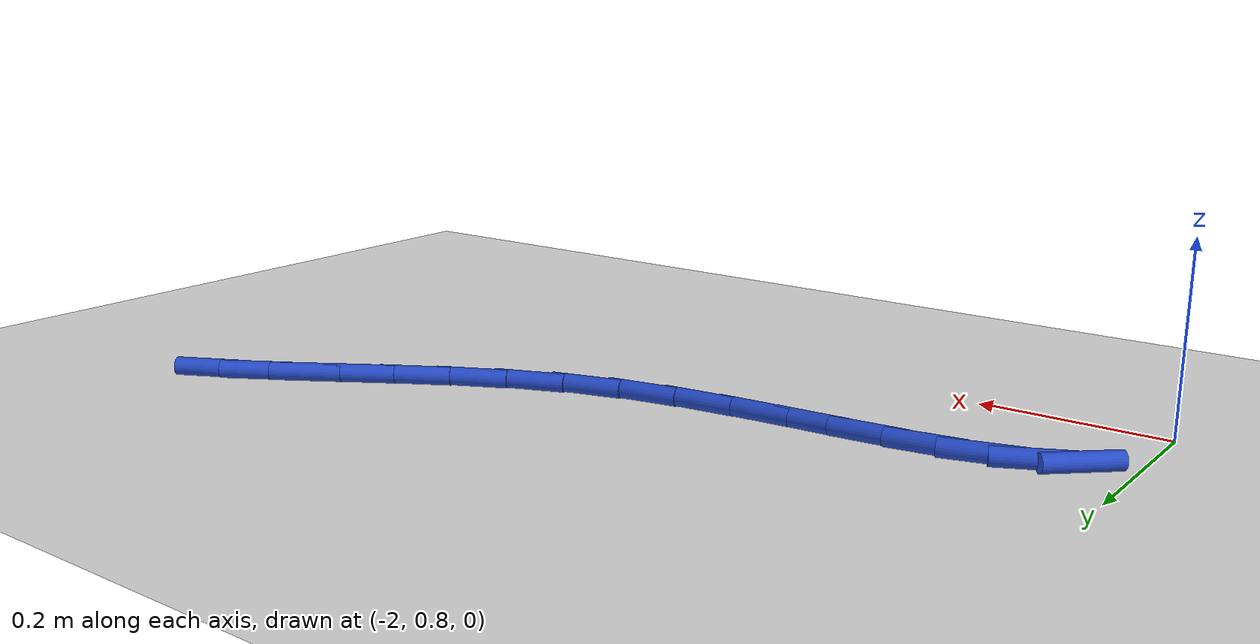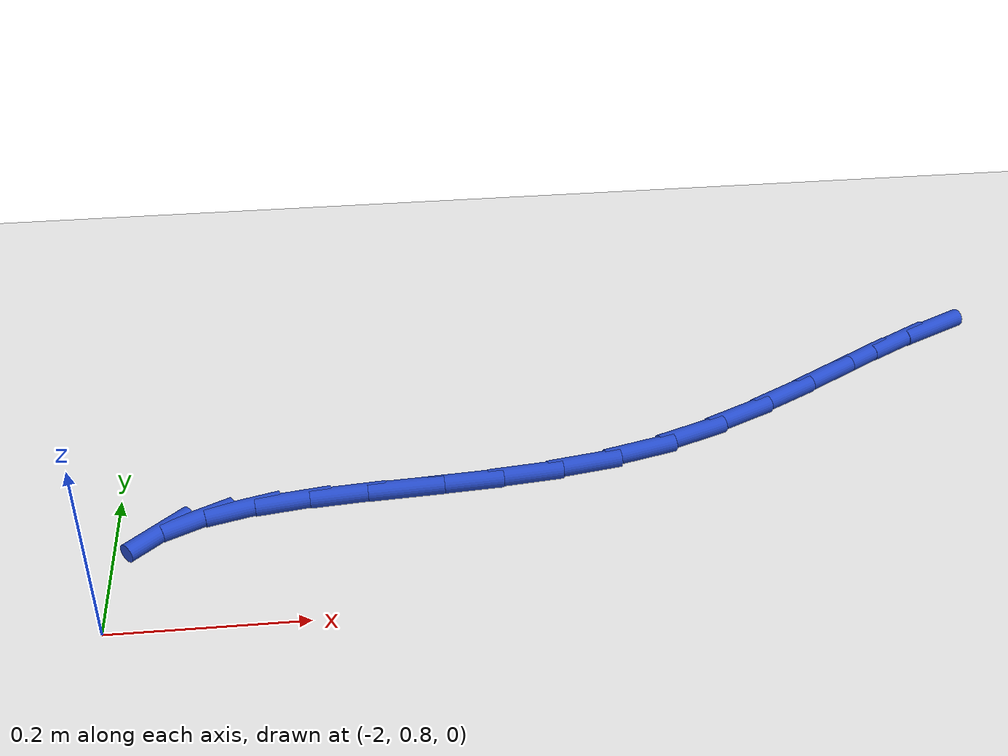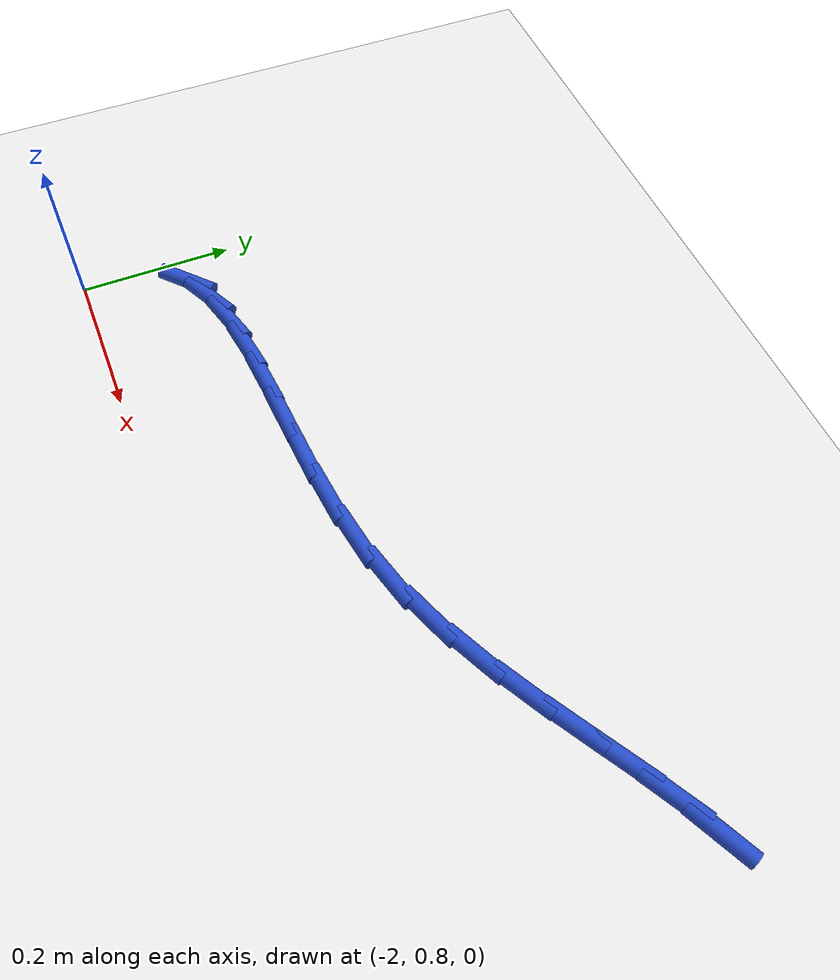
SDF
<sdf version="1.6">
 <world name="default">
  <model name="ground_plane">
   <static>1</static>
   <link name="link">
    <collision name="collision">
     <geometry><plane><normal>0 0 1</normal><size>100 100</size></plane></geometry>
     <surface><friction><ode><mu>100</mu><mu2>50</mu2></ode></friction></surface>
    </collision>
    <visual name="visual">
     <cast_shadows>0</cast_shadows>
     <geometry><plane><normal>0 0 1</normal><size>100 100</size></plane></geometry>
     <material>
      <script><uri>file://media/materials/scripts/gazebo.material</uri><name>Gazebo/WhiteGlow</name></script>
     </material>
    </visual>
   </link>
  </model>
  <model name="line">
   <link name="link_32">
    <pose>-1.078441029564543 1.218209353139725 0.01 0 1.57 0.46525836492123884</pose>
    <collision name="collision">
     <geometry><cylinder><radius>0.01</radius><length>0.08</length></cylinder></geometry>
    </collision>
    <visual name="visual">
     <material>
      <script><name>Gazebo/Blue</name><uri>file://media/materials/scripts/gazebo.material</uri></script>
     </material>
     <geometry><cylinder><radius>0.01</radius><length>0.08</length></cylinder></geometry>
    </visual>
   </link>
   <link name="link_33">
    <pose>-1.1258158667816 1.1944264709399541 0.01 0 1.57 0.5249530123507562</pose>
    <collision name="collision">
     <geometry><cylinder><radius>0.01</radius><length>0.08</length></cylinder></geometry>
    </collision>
    <visual name="visual">
     <material>
      <script><name>Gazebo/Blue</name><uri>file://media/materials/scripts/gazebo.material</uri></script>
     </material>
     <geometry><cylinder><radius>0.01</radius><length>0.08</length></cylinder></geometry>
    </visual>
   </link>
   <link name="link_34">
    <pose>-1.1750048147632752 1.1659383310539473 0.01 0 1.57 0.5493124226456678</pose>
    <collision name="collision">
     <geometry><cylinder><radius>0.01</radius><length>0.08</length></cylinder></geometry>
    </collision>
    <visual name="visual">
     <material>
      <script><name>Gazebo/Blue</name><uri>file://media/materials/scripts/gazebo.material</uri></script>
     </material>
     <geometry><cylinder><radius>0.01</radius><length>0.08</length></cylinder></geometry>
    </visual>
   </link>
   <link name="link_35">
    <pose>-1.2261079156905659 1.1346550784850367 0.01 0 1.57 0.5445322898843105</pose>
    <collision name="collision">
     <geometry><cylinder><radius>0.01</radius><length>0.08</length></cylinder></geometry>
    </collision>
    <visual name="visual">
     <material>
      <script><name>Gazebo/Blue</name><uri>file://media/materials/scripts/gazebo.material</uri></script>
     </material>
     <geometry><cylinder><radius>0.01</radius><length>0.08</length></cylinder></geometry>
    </visual>
   </link>
   <link name="link_36">
    <pose>-1.279225211744469 1.1024868582365555 0.01 0 1.57 0.5134245930214835</pose>
    <collision name="collision">
     <geometry><cylinder><radius>0.01</radius><length>0.08</length></cylinder></geometry>
    </collision>
    <visual name="visual">
     <material>
      <script><name>Gazebo/Blue</name><uri>file://media/materials/scripts/gazebo.material</uri></script>
     </material>
     <geometry><cylinder><radius>0.01</radius><length>0.08</length></cylinder></geometry>
    </visual>
   </link>
   <link name="link_37">
    <pose>-1.3344567451059834 1.0713438153118353 0.01 0 1.57 0.4564473395704383</pose>
    <collision name="collision">
     <geometry><cylinder><radius>0.01</radius><length>0.08</length></cylinder></geometry>
    </collision>
    <visual name="visual">
     <material>
      <script><name>Gazebo/Blue</name><uri>file://media/materials/scripts/gazebo.material</uri></script>
     </material>
     <geometry><cylinder><radius>0.01</radius><length>0.08</length></cylinder></geometry>
    </visual>
   </link>
   <link name="link_38">
    <pose>-1.391902557956108 1.0431360947142083 0.01 0 1.57 0.3726662908838794</pose>
    <collision name="collision">
     <geometry><cylinder><radius>0.01</radius><length>0.08</length></cylinder></geometry>
    </collision>
    <visual name="visual">
     <material>
      <script><name>Gazebo/Blue</name><uri>file://media/materials/scripts/gazebo.material</uri></script>
     </material>
     <geometry><cylinder><radius>0.01</radius><length>0.08</length></cylinder></geometry>
    </visual>
   </link>
   <link name="link_39">
    <pose>-1.4516626924758396 1.019773841447007 0.01 0 1.57 0.2651661795075018</pose>
    <collision name="collision">
     <geometry><cylinder><radius>0.01</radius><length>0.08</length></cylinder></geometry>
    </collision>
    <visual name="visual">
     <material>
      <script><name>Gazebo/Blue</name><uri>file://media/materials/scripts/gazebo.material</uri></script>
     </material>
     <geometry><cylinder><radius>0.01</radius><length>0.08</length></cylinder></geometry>
    </visual>
   </link>
   <link name="link_40">
    <pose>-1.5137425528127186 1.0029153736825904 0.01 0 1.57 0.17041154281142065</pose>
    <collision name="collision">
     <geometry><cylinder><radius>0.01</radius><length>0.08</length></cylinder></geometry>
    </collision>
    <visual name="visual">
     <material>
      <script><name>Gazebo/Blue</name><uri>file://media/materials/scripts/gazebo.material</uri></script>
     </material>
     <geometry><cylinder><radius>0.01</radius><length>0.08</length></cylinder></geometry>
    </visual>
   </link>
   <link name="link_41">
    <pose>-1.5773051651790109 0.9919774861996868 0.01 0 1.57 0.10586630148808403</pose>
    <collision name="collision">
     <geometry><cylinder><radius>0.01</radius><length>0.08</length></cylinder></geometry>
    </collision>
    <visual name="visual">
     <material>
      <script><name>Gazebo/Blue</name><uri>file://media/materials/scripts/gazebo.material</uri></script>
     </material>
     <geometry><cylinder><radius>0.01</radius><length>0.08</length></cylinder></geometry>
    </visual>
   </link>
   <link name="link_42">
    <pose>-1.6410717746881742 0.9852014175018949 0.01 0 1.57 0.06981024017355478</pose>
    <collision name="collision">
     <geometry><cylinder><radius>0.01</radius><length>0.08</length></cylinder></geometry>
    </collision>
    <visual name="visual">
     <material>
      <script><name>Gazebo/Blue</name><uri>file://media/materials/scripts/gazebo.material</uri></script>
     </material>
     <geometry><cylinder><radius>0.01</radius><length>0.08</length></cylinder></geometry>
    </visual>
   </link>
   <link name="link_43">
    <pose>-1.7037597283057013 0.9808180333260471 0.01 0 1.57 0.06224408921519274</pose>
    <collision name="collision">
     <geometry><cylinder><radius>0.01</radius><length>0.08</length></cylinder></geometry>
    </collision>
    <visual name="visual">
     <material>
      <script><name>Gazebo/Blue</name><uri>file://media/materials/scripts/gazebo.material</uri></script>
     </material>
     <geometry><cylinder><radius>0.01</radius><length>0.08</length></cylinder></geometry>
    </visual>
   </link>
   <link name="link_44">
    <pose>-1.764086372997085 0.9770581994089745 0.01 0 1.57 0.0863266538071277</pose>
    <collision name="collision">
     <geometry><cylinder><radius>0.01</radius><length>0.08</length></cylinder></geometry>
    </collision>
    <visual name="visual">
     <material>
      <script><name>Gazebo/Blue</name><uri>file://media/materials/scripts/gazebo.material</uri></script>
     </material>
     <geometry><cylinder><radius>0.01</radius><length>0.08</length></cylinder></geometry>
    </visual>
   </link>
   <link name="link_45">
    <pose>-1.82076905572782 0.9721527814875092 0.01 0 1.57 0.14996168356677436</pose>
    <collision name="collision">
     <geometry><cylinder><radius>0.01</radius><length>0.08</length></cylinder></geometry>
    </collision>
    <visual name="visual">
     <material>
      <script><name>Gazebo/Blue</name><uri>file://media/materials/scripts/gazebo.material</uri></script>
     </material>
     <geometry><cylinder><radius>0.01</radius><length>0.08</length></cylinder></geometry>
    </visual>
   </link>
   <link name="link_46">
    <pose>-1.872525123463399 0.9643326452984823 0.01 0 1.57 0.2679297298422539</pose>
    <collision name="collision">
     <geometry><cylinder><radius>0.01</radius><length>0.08</length></cylinder></geometry>
    </collision>
    <visual name="visual">
     <material>
      <script><name>Gazebo/Blue</name><uri>file://media/materials/scripts/gazebo.material</uri></script>
     </material>
     <geometry><cylinder><radius>0.01</radius><length>0.08</length></cylinder></geometry>
    </visual>
   </link>
   <link name="link_47">
    <pose>-1.918071923169316 0.9518286565787261 0.01 0 1.57 0.4621652028313435</pose>
    <collision name="collision">
     <geometry><cylinder><radius>0.01</radius><length>0.08</length></cylinder></geometry>
    </collision>
    <visual name="visual">
     <material>
      <script><name>Gazebo/Blue</name><uri>file://media/materials/scripts/gazebo.material</uri></script>
     </material>
     <geometry><cylinder><radius>0.01</radius><length>0.08</length></cylinder></geometry>
    </visual>
   </link>
   <link name="link_48">
    <pose>-1.9561268018110636 0.9328716810650722 0.01 0 1.57 0.7453641971178623</pose>
    <collision name="collision">
     <geometry><cylinder><radius>0.01</radius><length>0.08</length></cylinder></geometry>
    </collision>
    <visual name="visual">
     <material>
      <script><name>Gazebo/Blue</name><uri>file://media/materials/scripts/gazebo.material</uri></script>
     </material>
     <geometry><cylinder><radius>0.01</radius><length>0.08</length></cylinder></geometry>
    </visual>
   </link>
  </model>
 </world>
</sdf>
